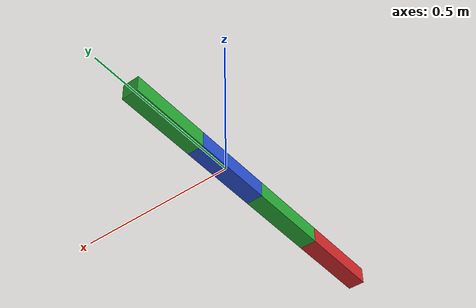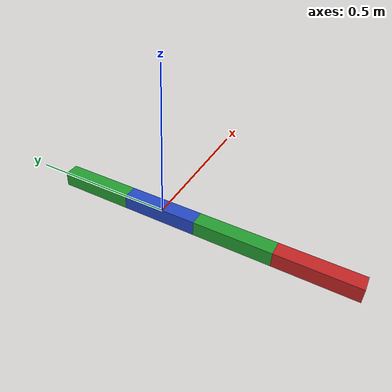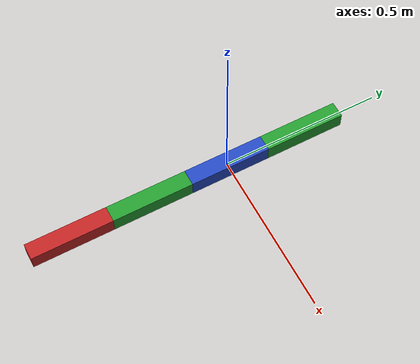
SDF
<?xml version='1.0'?>
<sdf version='1.6'>
  <model name='articulated_object'>
    <link name='link_1'>
      <pose frame=''>0 0 0 0 -0 0</pose>
      <inertial>
        <pose frame=''>0 0 0 0 -0 0</pose>
        <mass>10</mass>
        <inertia>
          <ixx>0</ixx>
          <ixy>0</ixy>
          <ixz>0</ixz>
          <iyy>0</iyy>
          <iyz>0</iyz>
          <izz>0</izz>
        </inertia>
      </inertial>
      <gravity>1</gravity>
      <velocity_decay/>
      <self_collide>0</self_collide>
      <enable_wind>0</enable_wind>
      <kinematic>0</kinematic>
      <visual name='link_1_visual'>
        <pose frame=''>0 0 0 0 -0 0</pose>
        <geometry>
          <box>
            <size>0.05 0.25 0.05</size>
          </box>
        </geometry>
        <material>
          <script>
            <name>Gazebo/Blue</name>
            <uri>file://media/materials/scripts/gazebo.material</uri>
          </script>
          <shader type='vertex'>
            <normal_map>__default__</normal_map>
          </shader>
          <ambient>0 0 1 1</ambient>
          <diffuse>0 0 1 1</diffuse>
          <specular>0.1 0.1 0.1 1</specular>
          <emissive>0 0 0 1</emissive>
        </material>
        <transparency>0</transparency>
        <cast_shadows>1</cast_shadows>
      </visual>
      <collision name='link_1_collision'>
        <laser_retro>0</laser_retro>
        <max_contacts>10</max_contacts>
        <pose frame=''>0 0 0 0 -0 0</pose>
        <geometry>
          <box>
            <size>0.05 0.2 0.05</size>
          </box>
        </geometry>
        <surface>
          <friction>
            <ode>
              <mu>1</mu>
              <mu2>1</mu2>
              <fdir1>0 0 0</fdir1>
              <slip1>0</slip1>
              <slip2>0</slip2>
            </ode>
            <torsional>
              <coefficient>1</coefficient>
              <patch_radius>0</patch_radius>
              <surface_radius>0</surface_radius>
              <use_patch_radius>1</use_patch_radius>
              <ode>
                <slip>0</slip>
              </ode>
            </torsional>
          </friction>
          <bounce>
            <restitution_coefficient>0</restitution_coefficient>
            <threshold>1e+06</threshold>
          </bounce>
          <contact>
            <collide_without_contact>0</collide_without_contact>
            <collide_without_contact_bitmask>1</collide_without_contact_bitmask>
            <collide_bitmask>1</collide_bitmask>
            <ode>
              <soft_cfm>0</soft_cfm>
              <soft_erp>0.2</soft_erp>
              <kp>1e+13</kp>
              <kd>1</kd>
              <max_vel>0.01</max_vel>
              <min_depth>0</min_depth>
            </ode>
            <bullet>
              <split_impulse>1</split_impulse>
              <split_impulse_penetration_threshold>-0.01</split_impulse_penetration_threshold>
              <soft_cfm>0</soft_cfm>
              <soft_erp>0.2</soft_erp>
              <kp>1e+13</kp>
              <kd>1</kd>
            </bullet>
          </contact>
        </surface>
      </collision>
    </link>
    <link name='link_0'>
      <pose frame=''>0 0.25 0 0 -0 0</pose>
      <inertial>
        <pose frame=''>0 0 0 0 -0 0</pose>
        <mass>0.01</mass>
        <inertia>
          <ixx>0</ixx>
          <ixy>0</ixy>
          <ixz>0</ixz>
          <iyy>0</iyy>
          <iyz>0</iyz>
          <izz>0</izz>
        </inertia>
      </inertial>
      <gravity>1</gravity>
      <velocity_decay/>
      <self_collide>0</self_collide>
      <enable_wind>0</enable_wind>
      <kinematic>0</kinematic>
      <visual name='link_0_visual'>
        <pose frame=''>0 0 0 0 -0 0</pose>
        <geometry>
          <box>
            <size>0.05 0.25 0.05</size>
          </box>
        </geometry>
        <material>
          <script>
            <name>Gazebo/Green</name>
            <uri>file://media/materials/scripts/gazebo.material</uri>
          </script>
          <shader type='vertex'>
            <normal_map>__default__</normal_map>
          </shader>
          <ambient>0 1 0 1</ambient>
          <diffuse>0 1 0 1</diffuse>
          <specular>0.1 0.1 0.1 1</specular>
          <emissive>0 0 0 1</emissive>
        </material>
        <transparency>0</transparency>
        <cast_shadows>1</cast_shadows>
      </visual>
      <collision name='link_0_collision'>
        <laser_retro>0</laser_retro>
        <max_contacts>10</max_contacts>
        <pose frame=''>0 0 0 0 -0 0</pose>
        <geometry>
          <box>
            <size>0.05 0.2 0.05</size>
          </box>
        </geometry>
        <surface>
          <friction>
            <ode>
              <mu>1</mu>
              <mu2>1</mu2>
              <fdir1>0 0 0</fdir1>
              <slip1>0</slip1>
              <slip2>0</slip2>
            </ode>
            <torsional>
              <coefficient>1</coefficient>
              <patch_radius>0</patch_radius>
              <surface_radius>0</surface_radius>
              <use_patch_radius>1</use_patch_radius>
              <ode>
                <slip>0</slip>
              </ode>
            </torsional>
          </friction>
          <bounce>
            <restitution_coefficient>0</restitution_coefficient>
            <threshold>1e+06</threshold>
          </bounce>
          <contact>
            <collide_without_contact>0</collide_without_contact>
            <collide_without_contact_bitmask>1</collide_without_contact_bitmask>
            <collide_bitmask>1</collide_bitmask>
            <ode>
              <soft_cfm>0</soft_cfm>
              <soft_erp>0.2</soft_erp>
              <kp>1e+13</kp>
              <kd>1</kd>
              <max_vel>0.01</max_vel>
              <min_depth>0</min_depth>
            </ode>
            <bullet>
              <split_impulse>1</split_impulse>
              <split_impulse_penetration_threshold>-0.01</split_impulse_penetration_threshold>
              <soft_cfm>0</soft_cfm>
              <soft_erp>0.2</soft_erp>
              <kp>1e+13</kp>
              <kd>1</kd>
            </bullet>
          </contact>
        </surface>
      </collision>
    </link>
    <link name='link_2'>
      <pose frame=''>-0 -0.25 -0 0 -0 0</pose>
      <inertial>
        <pose frame=''>0 0 0 0 -0 0</pose>
        <mass>0.01</mass>
        <inertia>
          <ixx>0</ixx>
          <ixy>0</ixy>
          <ixz>0</ixz>
          <iyy>0</iyy>
          <iyz>0</iyz>
          <izz>0</izz>
        </inertia>
      </inertial>
      <gravity>1</gravity>
      <velocity_decay/>
      <self_collide>0</self_collide>
      <enable_wind>0</enable_wind>
      <kinematic>0</kinematic>
      <visual name='link_2_visual'>
        <pose frame=''>0 0 0 0 -0 0</pose>
        <geometry>
          <box>
            <size>0.05 0.25 0.05</size>
          </box>
        </geometry>
        <material>
          <script>
            <name>Gazebo/Green</name>
            <uri>file://media/materials/scripts/gazebo.material</uri>
          </script>
          <shader type='vertex'>
            <normal_map>__default__</normal_map>
          </shader>
          <ambient>0 1 0 1</ambient>
          <diffuse>0 1 0 1</diffuse>
          <specular>0.1 0.1 0.1 1</specular>
          <emissive>0 0 0 1</emissive>
        </material>
        <transparency>0</transparency>
        <cast_shadows>1</cast_shadows>
      </visual>
      <collision name='link_2_collision'>
        <laser_retro>0</laser_retro>
        <max_contacts>10</max_contacts>
        <pose frame=''>0 0 0 0 -0 0</pose>
        <geometry>
          <box>
            <size>0.05 0.2 0.05</size>
          </box>
        </geometry>
        <surface>
          <friction>
            <ode>
              <mu>1</mu>
              <mu2>1</mu2>
              <fdir1>0 0 0</fdir1>
              <slip1>0</slip1>
              <slip2>0</slip2>
            </ode>
            <torsional>
              <coefficient>1</coefficient>
              <patch_radius>0</patch_radius>
              <surface_radius>0</surface_radius>
              <use_patch_radius>1</use_patch_radius>
              <ode>
                <slip>0</slip>
              </ode>
            </torsional>
          </friction>
          <bounce>
            <restitution_coefficient>0</restitution_coefficient>
            <threshold>1e+06</threshold>
          </bounce>
          <contact>
            <collide_without_contact>0</collide_without_contact>
            <collide_without_contact_bitmask>1</collide_without_contact_bitmask>
            <collide_bitmask>1</collide_bitmask>
            <ode>
              <soft_cfm>0</soft_cfm>
              <soft_erp>0.2</soft_erp>
              <kp>1e+13</kp>
              <kd>1</kd>
              <max_vel>0.01</max_vel>
              <min_depth>0</min_depth>
            </ode>
            <bullet>
              <split_impulse>1</split_impulse>
              <split_impulse_penetration_threshold>-0.01</split_impulse_penetration_threshold>
              <soft_cfm>0</soft_cfm>
              <soft_erp>0.2</soft_erp>
              <kp>1e+13</kp>
              <kd>1</kd>
            </bullet>
          </contact>
        </surface>
      </collision>
    </link>
    <link name='link_3'>
      <pose frame=''>-0 -0.5 -0 0 -0 0</pose>
      <inertial>
        <pose frame=''>0 0 0 0 -0 0</pose>
        <mass>0.0001</mass>
        <inertia>
          <ixx>0</ixx>
          <ixy>0</ixy>
          <ixz>0</ixz>
          <iyy>0</iyy>
          <iyz>0</iyz>
          <izz>0</izz>
        </inertia>
      </inertial>
      <gravity>1</gravity>
      <velocity_decay/>
      <self_collide>0</self_collide>
      <enable_wind>0</enable_wind>
      <kinematic>0</kinematic>
      <visual name='link_3_visual'>
        <pose frame=''>0 0 0 0 -0 0</pose>
        <geometry>
          <box>
            <size>0.05 0.25 0.05</size>
          </box>
        </geometry>
        <material>
          <script>
            <name>Gazebo/Red</name>
            <uri>file://media/materials/scripts/gazebo.material</uri>
          </script>
          <shader type='vertex'>
            <normal_map>__default__</normal_map>
          </shader>
          <ambient>1 0 0 1</ambient>
          <diffuse>1 0 0 1</diffuse>
          <specular>0.1 0.1 0.1 1</specular>
          <emissive>0 0 0 1</emissive>
        </material>
        <transparency>0</transparency>
        <cast_shadows>1</cast_shadows>
      </visual>
      <collision name='link_3_collision'>
        <laser_retro>0</laser_retro>
        <max_contacts>10</max_contacts>
        <pose frame=''>0 0 0 0 -0 0</pose>
        <geometry>
          <box>
            <size>0.05 0.2 0.05</size>
          </box>
        </geometry>
        <surface>
          <friction>
            <ode>
              <mu>1</mu>
              <mu2>1</mu2>
              <fdir1>0 0 0</fdir1>
              <slip1>0</slip1>
              <slip2>0</slip2>
            </ode>
            <torsional>
              <coefficient>1</coefficient>
              <patch_radius>0</patch_radius>
              <surface_radius>0</surface_radius>
              <use_patch_radius>1</use_patch_radius>
              <ode>
                <slip>0</slip>
              </ode>
            </torsional>
          </friction>
          <bounce>
            <restitution_coefficient>0</restitution_coefficient>
            <threshold>1e+06</threshold>
          </bounce>
          <contact>
            <collide_without_contact>0</collide_without_contact>
            <collide_without_contact_bitmask>1</collide_without_contact_bitmask>
            <collide_bitmask>1</collide_bitmask>
            <ode>
              <soft_cfm>0</soft_cfm>
              <soft_erp>0.2</soft_erp>
              <kp>1e+13</kp>
              <kd>1</kd>
              <max_vel>0.01</max_vel>
              <min_depth>0</min_depth>
            </ode>
            <bullet>
              <split_impulse>1</split_impulse>
              <split_impulse_penetration_threshold>-0.01</split_impulse_penetration_threshold>
              <soft_cfm>0</soft_cfm>
              <soft_erp>0.2</soft_erp>
              <kp>1e+13</kp>
              <kd>1</kd>
            </bullet>
          </contact>
        </surface>
      </collision>
    </link>
    <joint name='joint_0' type='revolute'>
      <parent>link_0</parent>
      <child>link_1</child>
      <pose frame=''>0 0.125 0 0 -0 0</pose>
      <axis>
        <xyz>0 0 1</xyz>
        <use_parent_model_frame>0</use_parent_model_frame>
        <limit>
          <lower>-1.79769e+308</lower>
          <upper>1.79769e+308</upper>
          <effort>-1</effort>
          <velocity>-1</velocity>
        </limit>
        <dynamics>
          <spring_reference>0</spring_reference>
          <spring_stiffness>0</spring_stiffness>
          <damping>0</damping>
          <friction>1.1</friction>
        </dynamics>
      </axis>
      <physics>
        <ode>
          <limit>
            <cfm>0</cfm>
            <erp>0.2</erp>
          </limit>
          <suspension>
            <cfm>0</cfm>
            <erp>0.2</erp>
          </suspension>
        </ode>
      </physics>
    </joint>
    <joint name='joint_1' type='revolute'>
      <parent>link_1</parent>
      <child>link_2</child>
      <pose frame=''>0 0.125 0 0 -0 0</pose>
      <axis>
        <xyz>0 0 1</xyz>
        <use_parent_model_frame>0</use_parent_model_frame>
        <limit>
          <lower>-1.79769e+308</lower>
          <upper>1.79769e+308</upper>
          <effort>-1</effort>
          <velocity>-1</velocity>
        </limit>
        <dynamics>
          <spring_reference>0</spring_reference>
          <spring_stiffness>0</spring_stiffness>
          <damping>0</damping>
          <friction>1.1</friction>
        </dynamics>
      </axis>
      <physics>
        <ode>
          <limit>
            <cfm>0</cfm>
            <erp>0.2</erp>
          </limit>
          <suspension>
            <cfm>0</cfm>
            <erp>0.2</erp>
          </suspension>
        </ode>
      </physics>
    </joint>
    <joint name='joint_2' type='revolute'>
      <parent>link_2</parent>
      <child>link_3</child>
      <pose frame=''>0 0.125 0 0 -0 0</pose>
      <axis>
        <xyz>0 0 1</xyz>
        <use_parent_model_frame>0</use_parent_model_frame>
        <limit>
          <lower>-1.79769e+308</lower>
          <upper>1.79769e+308</upper>
          <effort>-1</effort>
          <velocity>-1</velocity>
        </limit>
        <dynamics>
          <spring_reference>0</spring_reference>
          <spring_stiffness>0</spring_stiffness>
          <damping>0</damping>
          <friction>1.1</friction>
        </dynamics>
      </axis>
      <physics>
        <ode>
          <limit>
            <cfm>0</cfm>
            <erp>0.2</erp>
          </limit>
          <suspension>
            <cfm>0</cfm>
            <erp>0.2</erp>
          </suspension>
        </ode>
      </physics>
    </joint>
    <static>0</static>
    <allow_auto_disable>1</allow_auto_disable>
  </model>
</sdf>
